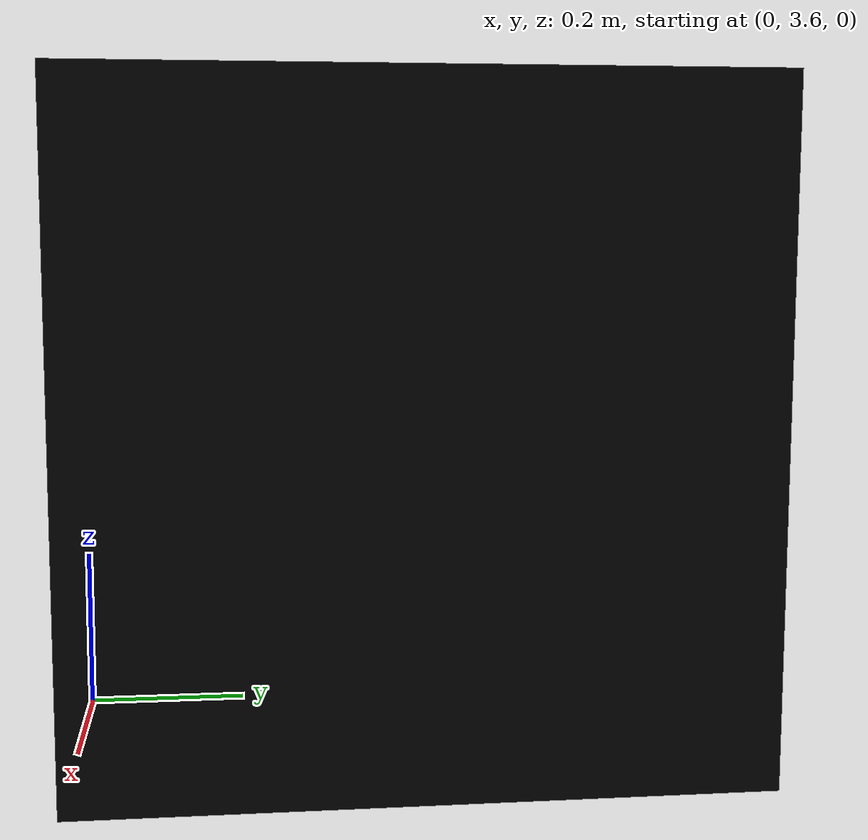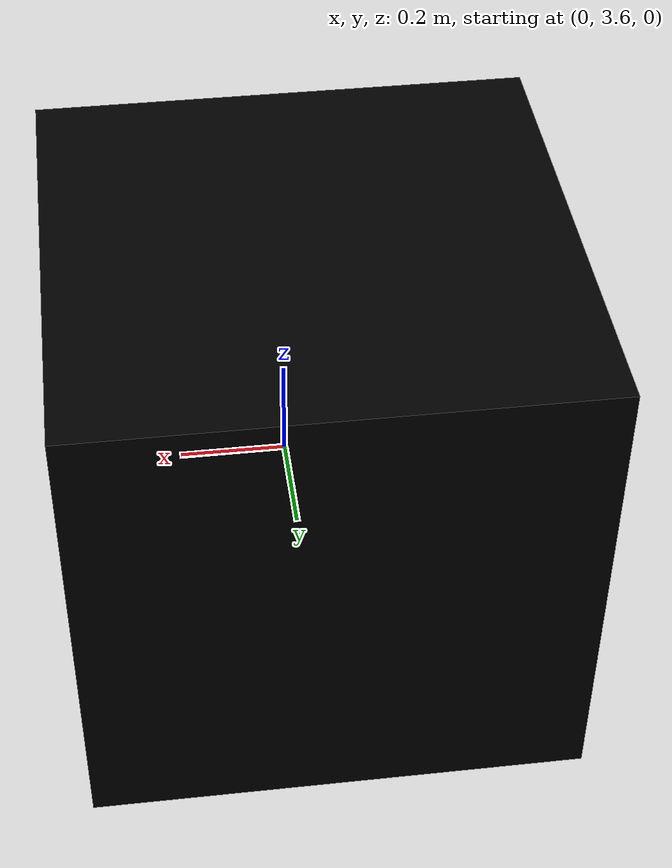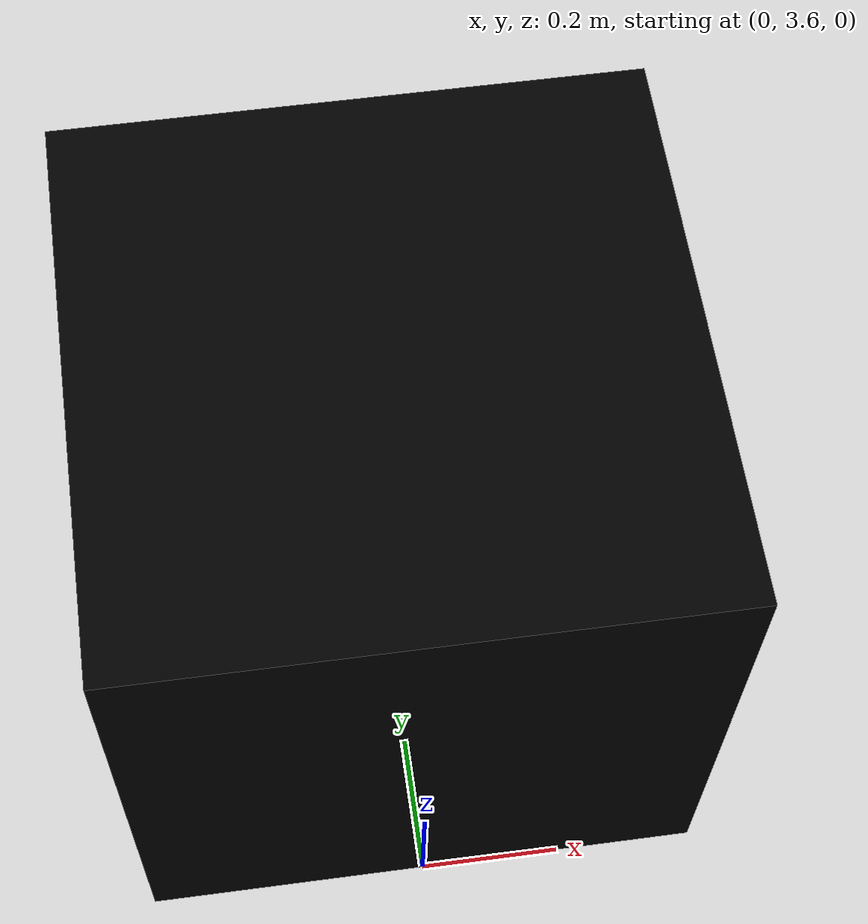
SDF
<?xml version='1.0'?>
<sdf version='1.4'>
  <model name="AruCo_Block_3">
    <static>true</static>
    <link name='chassis'>
            <pose>0 4 0.4 0 0 0</pose>

            <collision name='collision'>
              <geometry>
                <box>
                  <size>.8 .8 .8</size>
                </box>
              </geometry>
            </collision>

            <visual name='visual_3'>
              <geometry>
                <box>
                  <size>.8 .8 .8</size>
                </box>
              </geometry>
              <material>
                <script>
                <uri>model://AruCo_Block_3/materials/scripts</uri>
                <uri>model://AruCo_Block_3/materials/textures</uri>
                <name>block3</name>
                </script>
                <ambient>0 0 0 1</ambient>
                <diffuse>0 0 0 1</diffuse>
                <specular>0 0 0 0</specular>
                <emissive>1 1 1 1</emissive>
              </material>
            </visual>
          </link>
  </model>
</sdf>
